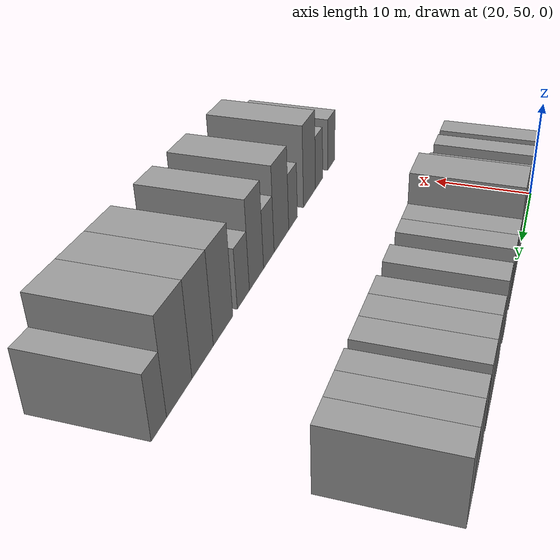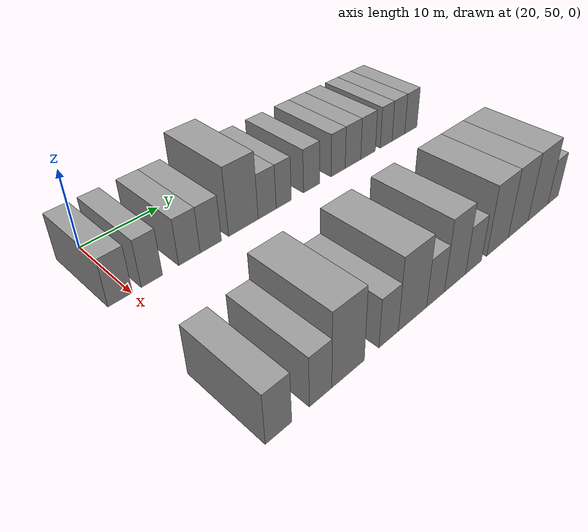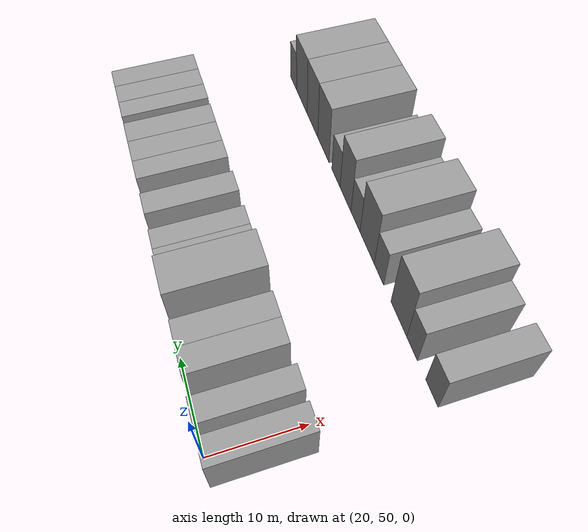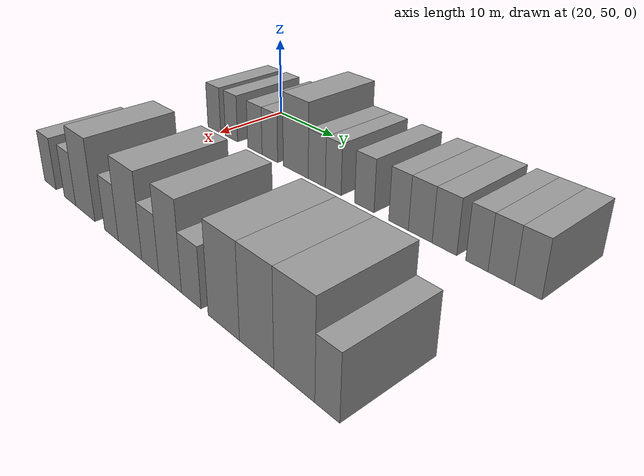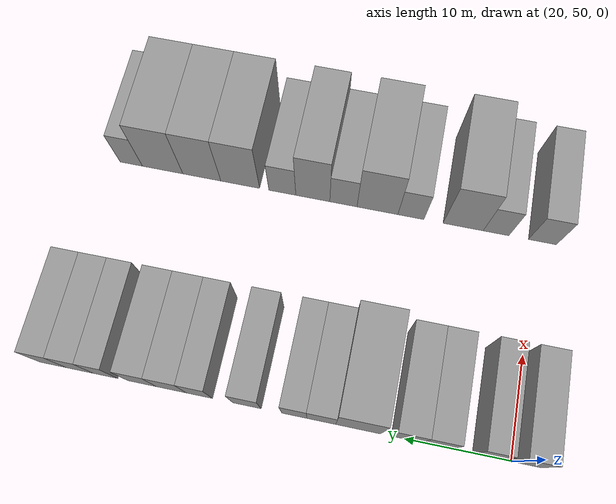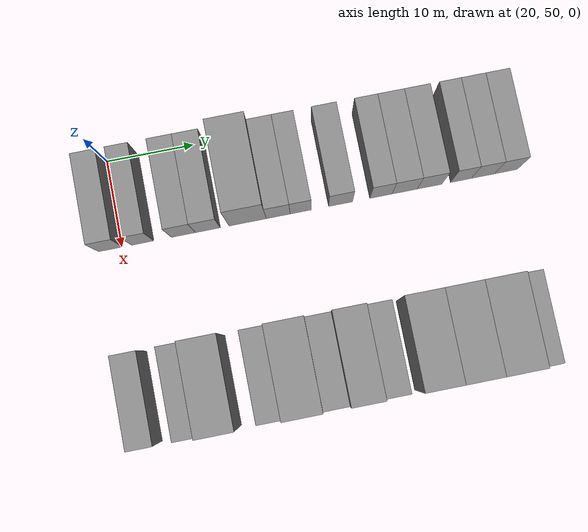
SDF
<sdf version="1.6">
 <world name="default">
  <model name="building_67">
   <static>1</static>
   <pose>25.0000 48.7328 0 0.000000 0.000000 0.000000</pose>
   <link name="link">
    <pose>0 0 3.00 0 0 0</pose>
    <collision name="collision"><geometry><box><size>10.0000 2.7548 6.0000</size></box></geometry></collision>
    <visual name="visual">
     <cast_shadows>0</cast_shadows>
     <geometry><box><size>10.0000 2.7548 6.0000</size></box></geometry>
     <material>
      <script>
       <uri>model://grey_wall/materials/scripts</uri>
       <uri>model://grey_wall/materials/textures</uri>
       <name>vrc/grey_wall</name>
      </script>
     </material>
    </visual>
   </link>
  </model>
  <model name="building_68">
   <static>1</static>
   <pose>25.0000 52.3777 0 0.000000 0.000000 0.000000</pose>
   <link name="link">
    <pose>0 0 3.00 0 0 0</pose>
    <collision name="collision"><geometry><box><size>10.0000 2.5351 6.0000</size></box></geometry></collision>
    <visual name="visual">
     <cast_shadows>0</cast_shadows>
     <geometry><box><size>10.0000 2.5351 6.0000</size></box></geometry>
     <material>
      <script>
       <uri>model://grey_wall/materials/scripts</uri>
       <uri>model://grey_wall/materials/textures</uri>
       <name>vrc/grey_wall</name>
      </script>
     </material>
    </visual>
   </link>
  </model>
  <model name="building_69">
   <static>1</static>
   <pose>25.0000 57.0287 0 0.000000 0.000000 0.000000</pose>
   <link name="link">
    <pose>0 0 3.00 0 0 0</pose>
    <collision name="collision"><geometry><box><size>10.0000 2.7669 6.0000</size></box></geometry></collision>
    <visual name="visual">
     <cast_shadows>0</cast_shadows>
     <geometry><box><size>10.0000 2.7669 6.0000</size></box></geometry>
     <material>
      <script>
       <uri>model://grey_wall/materials/scripts</uri>
       <uri>model://grey_wall/materials/textures</uri>
       <name>vrc/grey_wall</name>
      </script>
     </material>
    </visual>
   </link>
  </model>
  <model name="building_70">
   <static>1</static>
   <pose>25.0000 59.8413 0 0.000000 0.000000 0.000000</pose>
   <link name="link">
    <pose>0 0 3.00 0 0 0</pose>
    <collision name="collision"><geometry><box><size>10.0000 2.8583 6.0000</size></box></geometry></collision>
    <visual name="visual">
     <cast_shadows>0</cast_shadows>
     <geometry><box><size>10.0000 2.8583 6.0000</size></box></geometry>
     <material>
      <script>
       <uri>model://grey_wall/materials/scripts</uri>
       <uri>model://grey_wall/materials/textures</uri>
       <name>vrc/grey_wall</name>
      </script>
     </material>
    </visual>
   </link>
  </model>
  <model name="building_71">
   <static>1</static>
   <pose>25.0000 64.4073 0 0.000000 0.000000 0.000000</pose>
   <link name="link">
    <pose>0 0 4.50 0 0 0</pose>
    <collision name="collision"><geometry><box><size>10.0000 4.2737 9.0000</size></box></geometry></collision>
    <visual name="visual">
     <cast_shadows>0</cast_shadows>
     <geometry><box><size>10.0000 4.2737 9.0000</size></box></geometry>
     <material>
      <script>
       <uri>model://grey_wall/materials/scripts</uri>
       <uri>model://grey_wall/materials/textures</uri>
       <name>vrc/grey_wall</name>
      </script>
     </material>
    </visual>
   </link>
  </model>
  <model name="building_72">
   <static>1</static>
   <pose>25.0000 67.9203 0 0.000000 0.000000 0.000000</pose>
   <link name="link">
    <pose>0 0 3.00 0 0 0</pose>
    <collision name="collision"><geometry><box><size>10.0000 2.7523 6.0000</size></box></geometry></collision>
    <visual name="visual">
     <cast_shadows>0</cast_shadows>
     <geometry><box><size>10.0000 2.7523 6.0000</size></box></geometry>
     <material>
      <script>
       <uri>model://grey_wall/materials/scripts</uri>
       <uri>model://grey_wall/materials/textures</uri>
       <name>vrc/grey_wall</name>
      </script>
     </material>
    </visual>
   </link>
  </model>
  <model name="building_73">
   <static>1</static>
   <pose>25.0000 70.5036 0 0.000000 0.000000 0.000000</pose>
   <link name="link">
    <pose>0 0 3.00 0 0 0</pose>
    <collision name="collision"><geometry><box><size>10.0000 2.4143 6.0000</size></box></geometry></collision>
    <visual name="visual">
     <cast_shadows>0</cast_shadows>
     <geometry><box><size>10.0000 2.4143 6.0000</size></box></geometry>
     <material>
      <script>
       <uri>model://grey_wall/materials/scripts</uri>
       <uri>model://grey_wall/materials/textures</uri>
       <name>vrc/grey_wall</name>
      </script>
     </material>
    </visual>
   </link>
  </model>
  <model name="building_74">
   <static>1</static>
   <pose>25.0000 75.0879 0 0.000000 0.000000 0.000000</pose>
   <link name="link">
    <pose>0 0 3.00 0 0 0</pose>
    <collision name="collision"><geometry><box><size>10.0000 2.7543 6.0000</size></box></geometry></collision>
    <visual name="visual">
     <cast_shadows>0</cast_shadows>
     <geometry><box><size>10.0000 2.7543 6.0000</size></box></geometry>
     <material>
      <script>
       <uri>model://grey_wall/materials/scripts</uri>
       <uri>model://grey_wall/materials/textures</uri>
       <name>vrc/grey_wall</name>
      </script>
     </material>
    </visual>
   </link>
  </model>
  <model name="building_75">
   <static>1</static>
   <pose>25.0000 79.7432 0 0.000000 0.000000 0.000000</pose>
   <link name="link">
    <pose>0 0 3.00 0 0 0</pose>
    <collision name="collision"><geometry><box><size>10.0000 2.5564 6.0000</size></box></geometry></collision>
    <visual name="visual">
     <cast_shadows>0</cast_shadows>
     <geometry><box><size>10.0000 2.5564 6.0000</size></box></geometry>
     <material>
      <script>
       <uri>model://grey_wall/materials/scripts</uri>
       <uri>model://grey_wall/materials/textures</uri>
       <name>vrc/grey_wall</name>
      </script>
     </material>
    </visual>
   </link>
  </model>
  <model name="building_76">
   <static>1</static>
   <pose>25.0000 82.4895 0 0.000000 0.000000 0.000000</pose>
   <link name="link">
    <pose>0 0 3.00 0 0 0</pose>
    <collision name="collision"><geometry><box><size>10.0000 2.9362 6.0000</size></box></geometry></collision>
    <visual name="visual">
     <cast_shadows>0</cast_shadows>
     <geometry><box><size>10.0000 2.9362 6.0000</size></box></geometry>
     <material>
      <script>
       <uri>model://grey_wall/materials/scripts</uri>
       <uri>model://grey_wall/materials/textures</uri>
       <name>vrc/grey_wall</name>
      </script>
     </material>
    </visual>
   </link>
  </model>
  <model name="building_77">
   <static>1</static>
   <pose>25.0000 85.3926 0 0.000000 0.000000 0.000000</pose>
   <link name="link">
    <pose>0 0 3.00 0 0 0</pose>
    <collision name="collision"><geometry><box><size>10.0000 2.8700 6.0000</size></box></geometry></collision>
    <visual name="visual">
     <cast_shadows>0</cast_shadows>
     <geometry><box><size>10.0000 2.8700 6.0000</size></box></geometry>
     <material>
      <script>
       <uri>model://grey_wall/materials/scripts</uri>
       <uri>model://grey_wall/materials/textures</uri>
       <name>vrc/grey_wall</name>
      </script>
     </material>
    </visual>
   </link>
  </model>
  <model name="building_78">
   <static>1</static>
   <pose>25.0000 89.0332 0 0.000000 0.000000 0.000000</pose>
   <link name="link">
    <pose>0 0 3.00 0 0 0</pose>
    <collision name="collision"><geometry><box><size>10.0000 2.4111 6.0000</size></box></geometry></collision>
    <visual name="visual">
     <cast_shadows>0</cast_shadows>
     <geometry><box><size>10.0000 2.4111 6.0000</size></box></geometry>
     <material>
      <script>
       <uri>model://grey_wall/materials/scripts</uri>
       <uri>model://grey_wall/materials/textures</uri>
       <name>vrc/grey_wall</name>
      </script>
     </material>
    </visual>
   </link>
  </model>
  <model name="building_79">
   <static>1</static>
   <pose>25.0000 91.5945 0 0.000000 0.000000 0.000000</pose>
   <link name="link">
    <pose>0 0 3.00 0 0 0</pose>
    <collision name="collision"><geometry><box><size>10.0000 2.7115 6.0000</size></box></geometry></collision>
    <visual name="visual">
     <cast_shadows>0</cast_shadows>
     <geometry><box><size>10.0000 2.7115 6.0000</size></box></geometry>
     <material>
      <script>
       <uri>model://grey_wall/materials/scripts</uri>
       <uri>model://grey_wall/materials/textures</uri>
       <name>vrc/grey_wall</name>
      </script>
     </material>
    </visual>
   </link>
  </model>
  <model name="building_80">
   <static>1</static>
   <pose>25.0000 94.2840 0 0.000000 0.000000 0.000000</pose>
   <link name="link">
    <pose>0 0 3.00 0 0 0</pose>
    <collision name="collision"><geometry><box><size>10.0000 2.6676 6.0000</size></box></geometry></collision>
    <visual name="visual">
     <cast_shadows>0</cast_shadows>
     <geometry><box><size>10.0000 2.6676 6.0000</size></box></geometry>
     <material>
      <script>
       <uri>model://grey_wall/materials/scripts</uri>
       <uri>model://grey_wall/materials/textures</uri>
       <name>vrc/grey_wall</name>
      </script>
     </material>
    </visual>
   </link>
  </model>
  <model name="building_169">
   <static>1</static>
   <pose>47.0000 49.2706 0 0.000000 0.000000 0.000000</pose>
   <link name="link">
    <pose>0 0 3.00 0 0 0</pose>
    <collision name="collision"><geometry><box><size>10.0000 2.8651 6.0000</size></box></geometry></collision>
    <visual name="visual">
     <cast_shadows>0</cast_shadows>
     <geometry><box><size>10.0000 2.8651 6.0000</size></box></geometry>
     <material>
      <script>
       <uri>model://grey_wall/materials/scripts</uri>
       <uri>model://grey_wall/materials/textures</uri>
       <name>vrc/grey_wall</name>
      </script>
     </material>
    </visual>
   </link>
  </model>
  <model name="building_170">
   <static>1</static>
   <pose>47.0000 54.0342 0 0.000000 0.000000 0.000000</pose>
   <link name="link">
    <pose>0 0 3.00 0 0 0</pose>
    <collision name="collision"><geometry><box><size>10.0000 2.6620 6.0000</size></box></geometry></collision>
    <visual name="visual">
     <cast_shadows>0</cast_shadows>
     <geometry><box><size>10.0000 2.6620 6.0000</size></box></geometry>
     <material>
      <script>
       <uri>model://grey_wall/materials/scripts</uri>
       <uri>model://grey_wall/materials/textures</uri>
       <name>vrc/grey_wall</name>
      </script>
     </material>
    </visual>
   </link>
  </model>
  <model name="building_171">
   <static>1</static>
   <pose>47.0000 57.4485 0 0.000000 0.000000 0.000000</pose>
   <link name="link">
    <pose>0 0 4.50 0 0 0</pose>
    <collision name="collision"><geometry><box><size>10.0000 4.1666 9.0000</size></box></geometry></collision>
    <visual name="visual">
     <cast_shadows>0</cast_shadows>
     <geometry><box><size>10.0000 4.1666 9.0000</size></box></geometry>
     <material>
      <script>
       <uri>model://grey_wall/materials/scripts</uri>
       <uri>model://grey_wall/materials/textures</uri>
       <name>vrc/grey_wall</name>
      </script>
     </material>
    </visual>
   </link>
  </model>
  <model name="building_172">
   <static>1</static>
   <pose>47.0000 62.8997 0 0.000000 0.000000 0.000000</pose>
   <link name="link">
    <pose>0 0 3.00 0 0 0</pose>
    <collision name="collision"><geometry><box><size>10.0000 2.7359 6.0000</size></box></geometry></collision>
    <visual name="visual">
     <cast_shadows>0</cast_shadows>
     <geometry><box><size>10.0000 2.7359 6.0000</size></box></geometry>
     <material>
      <script>
       <uri>model://grey_wall/materials/scripts</uri>
       <uri>model://grey_wall/materials/textures</uri>
       <name>vrc/grey_wall</name>
      </script>
     </material>
    </visual>
   </link>
  </model>
  <model name="building_173">
   <static>1</static>
   <pose>47.0000 66.4232 0 0.000000 0.000000 0.000000</pose>
   <link name="link">
    <pose>0 0 4.50 0 0 0</pose>
    <collision name="collision"><geometry><box><size>10.0000 4.3111 9.0000</size></box></geometry></collision>
    <visual name="visual">
     <cast_shadows>0</cast_shadows>
     <geometry><box><size>10.0000 4.3111 9.0000</size></box></geometry>
     <material>
      <script>
       <uri>model://grey_wall/materials/scripts</uri>
       <uri>model://grey_wall/materials/textures</uri>
       <name>vrc/grey_wall</name>
      </script>
     </material>
    </visual>
   </link>
  </model>
  <model name="building_174">
   <static>1</static>
   <pose>47.0000 70.0201 0 0.000000 0.000000 0.000000</pose>
   <link name="link">
    <pose>0 0 3.00 0 0 0</pose>
    <collision name="collision"><geometry><box><size>10.0000 2.8826 6.0000</size></box></geometry></collision>
    <visual name="visual">
     <cast_shadows>0</cast_shadows>
     <geometry><box><size>10.0000 2.8826 6.0000</size></box></geometry>
     <material>
      <script>
       <uri>model://grey_wall/materials/scripts</uri>
       <uri>model://grey_wall/materials/textures</uri>
       <name>vrc/grey_wall</name>
      </script>
     </material>
    </visual>
   </link>
  </model>
  <model name="building_175">
   <static>1</static>
   <pose>47.0000 73.2749 0 0.000000 0.000000 0.000000</pose>
   <link name="link">
    <pose>0 0 4.50 0 0 0</pose>
    <collision name="collision"><geometry><box><size>10.0000 3.6271 9.0000</size></box></geometry></collision>
    <visual name="visual">
     <cast_shadows>0</cast_shadows>
     <geometry><box><size>10.0000 3.6271 9.0000</size></box></geometry>
     <material>
      <script>
       <uri>model://grey_wall/materials/scripts</uri>
       <uri>model://grey_wall/materials/textures</uri>
       <name>vrc/grey_wall</name>
      </script>
     </material>
    </visual>
   </link>
  </model>
  <model name="building_176">
   <static>1</static>
   <pose>47.0000 76.5347 0 0.000000 0.000000 0.000000</pose>
   <link name="link">
    <pose>0 0 3.00 0 0 0</pose>
    <collision name="collision"><geometry><box><size>10.0000 2.8926 6.0000</size></box></geometry></collision>
    <visual name="visual">
     <cast_shadows>0</cast_shadows>
     <geometry><box><size>10.0000 2.8926 6.0000</size></box></geometry>
     <material>
      <script>
       <uri>model://grey_wall/materials/scripts</uri>
       <uri>model://grey_wall/materials/textures</uri>
       <name>vrc/grey_wall</name>
      </script>
     </material>
    </visual>
   </link>
  </model>
  <model name="building_177">
   <static>1</static>
   <pose>47.0000 81.0772 0 0.000000 0.000000 0.000000</pose>
   <link name="link">
    <pose>0 0 4.50 0 0 0</pose>
    <collision name="collision"><geometry><box><size>10.0000 4.1924 9.0000</size></box></geometry></collision>
    <visual name="visual">
     <cast_shadows>0</cast_shadows>
     <geometry><box><size>10.0000 4.1924 9.0000</size></box></geometry>
     <material>
      <script>
       <uri>model://grey_wall/materials/scripts</uri>
       <uri>model://grey_wall/materials/textures</uri>
       <name>vrc/grey_wall</name>
      </script>
     </material>
    </visual>
   </link>
  </model>
  <model name="building_178">
   <static>1</static>
   <pose>47.0000 85.2466 0 0.000000 0.000000 0.000000</pose>
   <link name="link">
    <pose>0 0 4.50 0 0 0</pose>
    <collision name="collision"><geometry><box><size>10.0000 4.1463 9.0000</size></box></geometry></collision>
    <visual name="visual">
     <cast_shadows>0</cast_shadows>
     <geometry><box><size>10.0000 4.1463 9.0000</size></box></geometry>
     <material>
      <script>
       <uri>model://grey_wall/materials/scripts</uri>
       <uri>model://grey_wall/materials/textures</uri>
       <name>vrc/grey_wall</name>
      </script>
     </material>
    </visual>
   </link>
  </model>
  <model name="building_179">
   <static>1</static>
   <pose>47.0000 89.5381 0 0.000000 0.000000 0.000000</pose>
   <link name="link">
    <pose>0 0 4.50 0 0 0</pose>
    <collision name="collision"><geometry><box><size>10.0000 4.4367 9.0000</size></box></geometry></collision>
    <visual name="visual">
     <cast_shadows>0</cast_shadows>
     <geometry><box><size>10.0000 4.4367 9.0000</size></box></geometry>
     <material>
      <script>
       <uri>model://grey_wall/materials/scripts</uri>
       <uri>model://grey_wall/materials/textures</uri>
       <name>vrc/grey_wall</name>
      </script>
     </material>
    </visual>
   </link>
  </model>
  <model name="building_180">
   <static>1</static>
   <pose>47.0000 92.9904 0 0.000000 0.000000 0.000000</pose>
   <link name="link">
    <pose>0 0 3.00 0 0 0</pose>
    <collision name="collision"><geometry><box><size>10.0000 2.4679 6.0000</size></box></geometry></collision>
    <visual name="visual">
     <cast_shadows>0</cast_shadows>
     <geometry><box><size>10.0000 2.4679 6.0000</size></box></geometry>
     <material>
      <script>
       <uri>model://grey_wall/materials/scripts</uri>
       <uri>model://grey_wall/materials/textures</uri>
       <name>vrc/grey_wall</name>
      </script>
     </material>
    </visual>
   </link>
  </model>
 </world>
</sdf>
